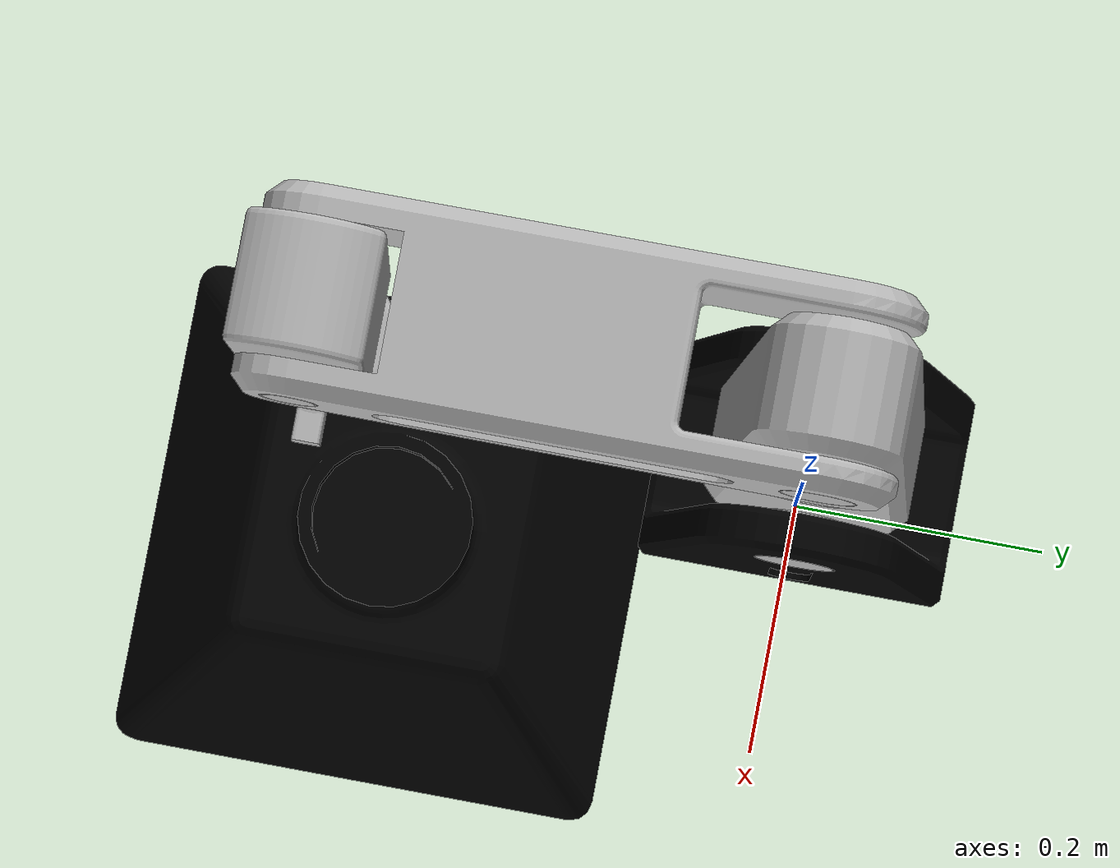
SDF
<?xml version='1.0'?>
<sdf version='1.7'>
  <model name='robot_arm_urdf'>
    <link name='base_link'>
      <pose>0 0 0 0 -0 0</pose>
      <inertial>
        <pose>0 0 0.073876 0 -0 0</pose>
        <mass>17.147</mass>
        <inertia>
          <ixx>0.192</ixx>
          <ixy>-0</ixy>
          <ixz>0</ixz>
          <iyy>0.192</iyy>
          <iyz>0</iyz>
          <izz>0.29544</izz>
        </inertia>
      </inertial>
      <self_collide>0</self_collide>
      <enable_wind>0</enable_wind>
      <kinematic>0</kinematic>
      <gravity>1</gravity>
      <visual name='base_link_visual'>
        <pose>0 0 0 0 -0 0</pose>
        <geometry>
          <mesh>
            <scale>1 1 1</scale>
            <uri>/home/sebas/catkin_ws/src/arm_ros_project/robot_arm_urdf/meshes/base_link.STL</uri>
          </mesh>
        </geometry>
        <material>
          <shader type='pixel'>
            <normal_map>__default__</normal_map>
          </shader>
          <script>
            <name>ModelPreview_1::base_link::base_link_visual_MATERIAL_</name>
          </script>
          <ambient>0.5 0.5 0 0</ambient>
          <diffuse>0 0 0 1</diffuse>
          <specular>0 0 0 1</specular>
          <emissive>0 0 0 1</emissive>
        </material>
        <transparency>0</transparency>
        <cast_shadows>1</cast_shadows>
      </visual>
      <collision name='base_link_collision'>
        <laser_retro>0</laser_retro>
        <max_contacts>10</max_contacts>
        <pose>0 0 0 0 -0 0</pose>
        <geometry>
          <mesh>
            <uri>/home/sebas/catkin_ws/src/arm_ros_project/robot_arm_urdf/meshes/base_link.STL</uri>
            <scale>1 1 1</scale>
          </mesh>
        </geometry>
        <surface>
          <friction>
            <ode>
              <mu>1</mu>
              <mu2>1</mu2>
              <fdir1>0 0 0</fdir1>
              <slip1>0</slip1>
              <slip2>0</slip2>
            </ode>
            <torsional>
              <coefficient>1</coefficient>
              <patch_radius>0</patch_radius>
              <surface_radius>0</surface_radius>
              <use_patch_radius>1</use_patch_radius>
              <ode>
                <slip>0</slip>
              </ode>
            </torsional>
          </friction>
          <bounce>
            <restitution_coefficient>0</restitution_coefficient>
            <threshold>1e+06</threshold>
          </bounce>
          <contact>
            <collide_without_contact>0</collide_without_contact>
            <collide_without_contact_bitmask>1</collide_without_contact_bitmask>
            <collide_bitmask>1</collide_bitmask>
            <ode>
              <soft_cfm>0</soft_cfm>
              <soft_erp>0.2</soft_erp>
              <kp>1e+13</kp>
              <kd>1</kd>
              <max_vel>0.01</max_vel>
              <min_depth>0</min_depth>
            </ode>
            <bullet>
              <split_impulse>1</split_impulse>
              <split_impulse_penetration_threshold>-0.01</split_impulse_penetration_threshold>
              <soft_cfm>0</soft_cfm>
              <soft_erp>0.2</soft_erp>
              <kp>1e+13</kp>
              <kd>1</kd>
            </bullet>
          </contact>
        </surface>
      </collision>
    </link>
    <link name='link_1'>
      <pose>0 -0 0.2 1.5708 -0 1.5708</pose>
      <inertial>
        <pose>0 0.11047 0 0 -0 0</pose>
        <mass>3.0905</mass>
        <inertia>
          <ixx>0.026302</ixx>
          <ixy>-0</ixy>
          <ixz>-0</ixz>
          <iyy>0.019632</iyy>
          <iyz>-0</iyz>
          <izz>0.025388</izz>
        </inertia>
      </inertial>
      <self_collide>1</self_collide>
      <enable_wind>0</enable_wind>
      <kinematic>0</kinematic>
      <gravity>1</gravity>
      <visual name='link_1_visual'>
        <pose>0 0 0 0 -0 0</pose>
        <geometry>
          <mesh>
            <scale>1 1 1</scale>
            <uri>/home/sebas/catkin_ws/src/arm_ros_project/robot_arm_urdf/meshes/link_1.STL</uri>
          </mesh>
        </geometry>
        <material>
          <shader type='pixel'>
            <normal_map>__default__</normal_map>
          </shader>
          <script>
            <name>ModelPreview_1::link_1::link_1_visual_MATERIAL_</name>
          </script>
          <ambient>0.5 0.5 0.5 0</ambient>
          <diffuse>0 0 0 1</diffuse>
          <specular>0 0 0 1</specular>
          <emissive>0 0 0 1</emissive>
        </material>
        <transparency>0</transparency>
        <cast_shadows>1</cast_shadows>
      </visual>
      <collision name='link_1_collision'>
        <laser_retro>0</laser_retro>
        <max_contacts>10</max_contacts>
        <pose>0 0 0 0 -0 0</pose>
        <geometry>
          <mesh>
            <uri>/home/sebas/catkin_ws/src/arm_ros_project/robot_arm_urdf/meshes/link_1.STL</uri>
            <scale>1 1 1</scale>
          </mesh>
        </geometry>
        <surface>
          <friction>
            <ode>
              <mu>1</mu>
              <mu2>1</mu2>
              <fdir1>0 0 0</fdir1>
              <slip1>0</slip1>
              <slip2>0</slip2>
            </ode>
            <torsional>
              <coefficient>1</coefficient>
              <patch_radius>0</patch_radius>
              <surface_radius>0</surface_radius>
              <use_patch_radius>1</use_patch_radius>
              <ode>
                <slip>0</slip>
              </ode>
            </torsional>
          </friction>
          <bounce>
            <restitution_coefficient>0</restitution_coefficient>
            <threshold>1e+06</threshold>
          </bounce>
          <contact>
            <collide_without_contact>0</collide_without_contact>
            <collide_without_contact_bitmask>1</collide_without_contact_bitmask>
            <collide_bitmask>1</collide_bitmask>
            <ode>
              <soft_cfm>0</soft_cfm>
              <soft_erp>0.2</soft_erp>
              <kp>1e+13</kp>
              <kd>1</kd>
              <max_vel>0.01</max_vel>
              <min_depth>0</min_depth>
            </ode>
            <bullet>
              <split_impulse>1</split_impulse>
              <split_impulse_penetration_threshold>-0.01</split_impulse_penetration_threshold>
              <soft_cfm>0</soft_cfm>
              <soft_erp>0.2</soft_erp>
              <kp>1e+13</kp>
              <kd>1</kd>
            </bullet>
          </contact>
        </surface>
      </collision>
    </link>
    <link name='link_2'>
      <pose>1e-06 -0 0.405 1.5708 -0 1.5708</pose>
      <inertial>
        <pose>-0 0.16752 -0 0 -0 0</pose>
        <mass>5.5867</mass>
        <inertia>
          <ixx>0.12632</ixx>
          <ixy>8.4877e-17</ixy>
          <ixz>7.8685e-19</ixz>
          <iyy>0.011401</iyy>
          <iyz>1.4432e-16</iyz>
          <izz>0.12911</izz>
        </inertia>
      </inertial>
      <self_collide>1</self_collide>
      <enable_wind>0</enable_wind>
      <kinematic>0</kinematic>
      <visual name='link_2_visual'>
        <pose>0 0 0 0 -0 0</pose>
        <geometry>
          <mesh>
            <scale>1 1 1</scale>
            <uri>/home/sebas/catkin_ws/src/arm_ros_project/robot_arm_urdf/meshes/link_2.STL</uri>
          </mesh>
        </geometry>
        <material>
          <shader type='pixel'/>
        </material>
        <transparency>0</transparency>
        <cast_shadows>1</cast_shadows>
      </visual>
      <collision name='link_2_collision'>
        <laser_retro>0</laser_retro>
        <max_contacts>10</max_contacts>
        <pose>0 0 0 0 -0 0</pose>
        <geometry>
          <mesh>
            <uri>/home/sebas/catkin_ws/src/arm_ros_project/robot_arm_urdf/meshes/link_2.STL</uri>
            <scale>1 1 1</scale>
          </mesh>
        </geometry>
        <surface>
          <friction>
            <ode>
              <mu>1</mu>
              <mu2>1</mu2>
              <fdir1>0 0 0</fdir1>
              <slip1>0</slip1>
              <slip2>0</slip2>
            </ode>
            <torsional>
              <coefficient>1</coefficient>
              <patch_radius>0</patch_radius>
              <surface_radius>0</surface_radius>
              <use_patch_radius>1</use_patch_radius>
              <ode>
                <slip>0</slip>
              </ode>
            </torsional>
          </friction>
          <bounce>
            <restitution_coefficient>0</restitution_coefficient>
            <threshold>1e+06</threshold>
          </bounce>
          <contact>
            <collide_without_contact>0</collide_without_contact>
            <collide_without_contact_bitmask>1</collide_without_contact_bitmask>
            <collide_bitmask>1</collide_bitmask>
            <ode>
              <soft_cfm>0</soft_cfm>
              <soft_erp>0.2</soft_erp>
              <kp>1e+13</kp>
              <kd>1</kd>
              <max_vel>0.01</max_vel>
              <min_depth>0</min_depth>
            </ode>
            <bullet>
              <split_impulse>1</split_impulse>
              <split_impulse_penetration_threshold>-0.01</split_impulse_penetration_threshold>
              <soft_cfm>0</soft_cfm>
              <soft_erp>0.2</soft_erp>
              <kp>1e+13</kp>
              <kd>1</kd>
            </bullet>
          </contact>
        </surface>
      </collision>
    </link>
    <link name='link_3'>
      <pose>2e-06 -0 0.805 1.5708 -0 1.5708</pose>
      <inertial>
        <pose>-0.17893 0 -0 0 -0 0</pose>
        <mass>2.8262</mass>
        <inertia>
          <ixx>0.0074041</ixx>
          <ixy>-1.7927e-17</ixy>
          <ixz>4.2672e-17</ixz>
          <iyy>0.028552</iyy>
          <iyz>-3.4736e-10</iyz>
          <izz>0.025128</izz>
        </inertia>
      </inertial>
      <self_collide>1</self_collide>
      <enable_wind>0</enable_wind>
      <kinematic>0</kinematic>
      <visual name='link_3_visual'>
        <pose>0 0 0 0 -0 0</pose>
        <geometry>
          <mesh>
            <scale>1 1 1</scale>
            <uri>/home/sebas/catkin_ws/src/arm_ros_project/robot_arm_urdf/meshes/link_3.STL</uri>
          </mesh>
        </geometry>
        <material>
          <shader type='pixel'/>
        </material>
        <transparency>0</transparency>
        <cast_shadows>1</cast_shadows>
      </visual>
      <collision name='link_3_collision'>
        <laser_retro>0</laser_retro>
        <max_contacts>10</max_contacts>
        <pose>0 0 0 0 -0 0</pose>
        <geometry>
          <mesh>
            <uri>/home/sebas/catkin_ws/src/arm_ros_project/robot_arm_urdf/meshes/link_3.STL</uri>
            <scale>1 1 1</scale>
          </mesh>
        </geometry>
        <surface>
          <friction>
            <ode>
              <mu>1</mu>
              <mu2>1</mu2>
              <fdir1>0 0 0</fdir1>
              <slip1>0</slip1>
              <slip2>0</slip2>
            </ode>
            <torsional>
              <coefficient>1</coefficient>
              <patch_radius>0</patch_radius>
              <surface_radius>0</surface_radius>
              <use_patch_radius>1</use_patch_radius>
              <ode>
                <slip>0</slip>
              </ode>
            </torsional>
          </friction>
          <bounce>
            <restitution_coefficient>0</restitution_coefficient>
            <threshold>1e+06</threshold>
          </bounce>
          <contact>
            <collide_without_contact>0</collide_without_contact>
            <collide_without_contact_bitmask>1</collide_without_contact_bitmask>
            <collide_bitmask>1</collide_bitmask>
            <ode>
              <soft_cfm>0</soft_cfm>
              <soft_erp>0.2</soft_erp>
              <kp>1e+13</kp>
              <kd>1</kd>
              <max_vel>0.01</max_vel>
              <min_depth>0</min_depth>
            </ode>
            <bullet>
              <split_impulse>1</split_impulse>
              <split_impulse_penetration_threshold>-0.01</split_impulse_penetration_threshold>
              <soft_cfm>0</soft_cfm>
              <soft_erp>0.2</soft_erp>
              <kp>1e+13</kp>
              <kd>1</kd>
            </bullet>
          </contact>
        </surface>
      </collision>
    </link>
    <link name='link_4'>
      <pose>4e-06 -0.35 0.805 -2.36302 -1.57079 -0.778568</pose>
      <inertial>
        <pose>-0.051672 -0 -0 0 -0 0</pose>
        <mass>1.8097</mass>
        <inertia>
          <ixx>0.0023112</ixx>
          <ixy>-9.6437e-18</ixy>
          <ixz>-9.9829e-19</ixz>
          <iyy>0.0096102</iyy>
          <iyz>1.3194e-19</iyz>
          <izz>0.0093908</izz>
        </inertia>
      </inertial>
      <self_collide>1</self_collide>
      <enable_wind>0</enable_wind>
      <kinematic>0</kinematic>
      <visual name='link_4_visual'>
        <pose>0 0 0 0 -0 0</pose>
        <geometry>
          <mesh>
            <scale>1 1 1</scale>
            <uri>/home/sebas/catkin_ws/src/arm_ros_project/robot_arm_urdf/meshes/link_4.STL</uri>
          </mesh>
        </geometry>
        <material>
          <shader type='pixel'/>
        </material>
        <transparency>0</transparency>
        <cast_shadows>1</cast_shadows>
      </visual>
      <collision name='link_4_collision'>
        <laser_retro>0</laser_retro>
        <max_contacts>10</max_contacts>
        <pose>0 0 0 0 -0 0</pose>
        <geometry>
          <mesh>
            <uri>/home/sebas/catkin_ws/src/arm_ros_project/robot_arm_urdf/meshes/link_4.STL</uri>
            <scale>1 1 1</scale>
          </mesh>
        </geometry>
        <surface>
          <friction>
            <ode>
              <mu>1</mu>
              <mu2>1</mu2>
              <fdir1>0 0 0</fdir1>
              <slip1>0</slip1>
              <slip2>0</slip2>
            </ode>
            <torsional>
              <coefficient>1</coefficient>
              <patch_radius>0</patch_radius>
              <surface_radius>0</surface_radius>
              <use_patch_radius>1</use_patch_radius>
              <ode>
                <slip>0</slip>
              </ode>
            </torsional>
          </friction>
          <bounce>
            <restitution_coefficient>0</restitution_coefficient>
            <threshold>1e+06</threshold>
          </bounce>
          <contact>
            <collide_without_contact>0</collide_without_contact>
            <collide_without_contact_bitmask>1</collide_without_contact_bitmask>
            <collide_bitmask>1</collide_bitmask>
            <ode>
              <soft_cfm>0</soft_cfm>
              <soft_erp>0.2</soft_erp>
              <kp>1e+13</kp>
              <kd>1</kd>
              <max_vel>0.01</max_vel>
              <min_depth>0</min_depth>
            </ode>
            <bullet>
              <split_impulse>1</split_impulse>
              <split_impulse_penetration_threshold>-0.01</split_impulse_penetration_threshold>
              <soft_cfm>0</soft_cfm>
              <soft_erp>0.2</soft_erp>
              <kp>1e+13</kp>
              <kd>1</kd>
            </bullet>
          </contact>
        </surface>
      </collision>
    </link>
    <link name='link_5'>
      <pose>3e-06 -0.349999 0.617 -2.36302 -1.57079 -0.778568</pose>
      <inertial>
        <pose>-0.018544 0 -0 0 -0 0</pose>
        <mass>0.19053</mass>
        <inertia>
          <ixx>0.00030197</ixx>
          <ixy>1.6611e-20</ixy>
          <ixz>3.6309e-21</ixz>
          <iyy>0.00022817</iyy>
          <iyz>-1.9664e-11</iyz>
          <izz>0.00011843</izz>
        </inertia>
      </inertial>
      <self_collide>1</self_collide>
      <enable_wind>0</enable_wind>
      <kinematic>0</kinematic>
      <visual name='link_5_visual'>
        <pose>0 0 0 0 -0 0</pose>
        <geometry>
          <mesh>
            <scale>1 1 1</scale>
            <uri>/home/sebas/catkin_ws/src/arm_ros_project/robot_arm_urdf/meshes/link_5.STL</uri>
          </mesh>
        </geometry>
        <material>
          <shader type='pixel'/>
        </material>
        <transparency>0</transparency>
        <cast_shadows>1</cast_shadows>
      </visual>
      <collision name='link_5_collision'>
        <laser_retro>0</laser_retro>
        <max_contacts>10</max_contacts>
        <pose>0 0 0 0 -0 0</pose>
        <geometry>
          <mesh>
            <uri>/home/sebas/catkin_ws/src/arm_ros_project/robot_arm_urdf/meshes/link_5.STL</uri>
            <scale>1 1 1</scale>
          </mesh>
        </geometry>
        <surface>
          <friction>
            <ode>
              <mu>1</mu>
              <mu2>1</mu2>
              <fdir1>0 0 0</fdir1>
              <slip1>0</slip1>
              <slip2>0</slip2>
            </ode>
            <torsional>
              <coefficient>1</coefficient>
              <patch_radius>0</patch_radius>
              <surface_radius>0</surface_radius>
              <use_patch_radius>1</use_patch_radius>
              <ode>
                <slip>0</slip>
              </ode>
            </torsional>
          </friction>
          <bounce>
            <restitution_coefficient>0</restitution_coefficient>
            <threshold>1e+06</threshold>
          </bounce>
          <contact>
            <collide_without_contact>0</collide_without_contact>
            <collide_without_contact_bitmask>1</collide_without_contact_bitmask>
            <collide_bitmask>1</collide_bitmask>
            <ode>
              <soft_cfm>0</soft_cfm>
              <soft_erp>0.2</soft_erp>
              <kp>1e+13</kp>
              <kd>1</kd>
              <max_vel>0.01</max_vel>
              <min_depth>0</min_depth>
            </ode>
            <bullet>
              <split_impulse>1</split_impulse>
              <split_impulse_penetration_threshold>-0.01</split_impulse_penetration_threshold>
              <soft_cfm>0</soft_cfm>
              <soft_erp>0.2</soft_erp>
              <kp>1e+13</kp>
              <kd>1</kd>
            </bullet>
          </contact>
        </surface>
      </collision>
    </link>
    <link name='link_6'>
      <pose>3e-06 0.049999 1.157 -2.38214 -1.57079 -0.759448</pose>
      <inertial>
        <pose>-0.60237 0.4 -0.016013 0 -0 0</pose>
        <mass>0.11653</mass>
        <inertia>
          <ixx>3.925e-05</ixx>
          <ixy>-0</ixy>
          <ixz>1.026e-05</ixz>
          <iyy>7.119e-05</iyy>
          <iyz>-0</iyz>
          <izz>8.488e-05</izz>
        </inertia>
      </inertial>
      <self_collide>1</self_collide>
      <enable_wind>0</enable_wind>
      <kinematic>0</kinematic>
      <gravity>1</gravity>
      <visual name='link_6_visual'>
        <pose>0 0 0 0 -0 0</pose>
        <geometry>
          <mesh>
            <scale>1 1 1</scale>
            <uri>/home/sebas/catkin_ws/src/arm_ros_project/robot_arm_urdf/meshes/link_6.STL</uri>
          </mesh>
        </geometry>
        <material>
          <shader type='pixel'>
            <normal_map>__default__</normal_map>
          </shader>
          <script>
            <name>ModelPreview_1::link_6::link_6_visual_MATERIAL_</name>
          </script>
          <ambient>1 0.5 0 0</ambient>
          <diffuse>0 0 0 1</diffuse>
          <specular>0 0 0 1</specular>
          <emissive>0 0 0 1</emissive>
        </material>
        <transparency>0</transparency>
        <cast_shadows>1</cast_shadows>
      </visual>
      <collision name='link_6_collision'>
        <laser_retro>0</laser_retro>
        <max_contacts>10</max_contacts>
        <pose>0 0 0 0 -0 0</pose>
        <geometry>
          <mesh>
            <uri>/home/sebas/catkin_ws/src/arm_ros_project/robot_arm_urdf/meshes/link_6.STL</uri>
            <scale>1 1 1</scale>
          </mesh>
        </geometry>
        <surface>
          <friction>
            <ode>
              <mu>1</mu>
              <mu2>1</mu2>
              <fdir1>0 0 0</fdir1>
              <slip1>0</slip1>
              <slip2>0</slip2>
            </ode>
            <torsional>
              <coefficient>1</coefficient>
              <patch_radius>0</patch_radius>
              <surface_radius>0</surface_radius>
              <use_patch_radius>1</use_patch_radius>
              <ode>
                <slip>0</slip>
              </ode>
            </torsional>
          </friction>
          <bounce>
            <restitution_coefficient>0</restitution_coefficient>
            <threshold>1e+06</threshold>
          </bounce>
          <contact>
            <collide_without_contact>0</collide_without_contact>
            <collide_without_contact_bitmask>1</collide_without_contact_bitmask>
            <collide_bitmask>1</collide_bitmask>
            <ode>
              <soft_cfm>0</soft_cfm>
              <soft_erp>0.2</soft_erp>
              <kp>1e+13</kp>
              <kd>1</kd>
              <max_vel>0.01</max_vel>
              <min_depth>0</min_depth>
            </ode>
            <bullet>
              <split_impulse>1</split_impulse>
              <split_impulse_penetration_threshold>-0.01</split_impulse_penetration_threshold>
              <soft_cfm>0</soft_cfm>
              <soft_erp>0.2</soft_erp>
              <kp>1e+13</kp>
              <kd>1</kd>
            </bullet>
          </contact>
        </surface>
      </collision>
    </link>
    <link name='link_7'>
      <pose>6e-06 -0.750001 1.157 0.765936 -1.57079 -0.765929</pose>
      <inertial>
        <pose>-0.60237 0.4 -0.016013 0 -0 0</pose>
        <mass>0.11653</mass>
        <inertia>
          <ixx>3.925e-05</ixx>
          <ixy>-0</ixy>
          <ixz>1.026e-05</ixz>
          <iyy>7.119e-05</iyy>
          <iyz>-0</iyz>
          <izz>8.488e-05</izz>
        </inertia>
      </inertial>
      <self_collide>1</self_collide>
      <enable_wind>0</enable_wind>
      <kinematic>0</kinematic>
      <gravity>1</gravity>
      <visual name='link_7_visual'>
        <pose>0 0 0 0 -0 0</pose>
        <geometry>
          <mesh>
            <scale>1 1 1</scale>
            <uri>/home/sebas/catkin_ws/src/arm_ros_project/robot_arm_urdf/meshes/link_7.STL</uri>
          </mesh>
        </geometry>
        <material>
          <shader type='pixel'>
            <normal_map>__default__</normal_map>
          </shader>
          <script>
            <name>ModelPreview_1::link_7::link_7_visual_MATERIAL_</name>
          </script>
          <ambient>1 0.5 0 0</ambient>
          <diffuse>0 0 0 1</diffuse>
          <specular>0 0 0 1</specular>
          <emissive>0 0 0 1</emissive>
        </material>
        <transparency>0</transparency>
        <cast_shadows>1</cast_shadows>
      </visual>
      <collision name='link_7_collision'>
        <laser_retro>0</laser_retro>
        <max_contacts>10</max_contacts>
        <pose>0 0 0 0 -0 0</pose>
        <geometry>
          <mesh>
            <uri>/home/sebas/catkin_ws/src/arm_ros_project/robot_arm_urdf/meshes/link_7.STL</uri>
            <scale>1 1 1</scale>
          </mesh>
        </geometry>
        <surface>
          <friction>
            <ode>
              <mu>1</mu>
              <mu2>1</mu2>
              <fdir1>0 0 0</fdir1>
              <slip1>0</slip1>
              <slip2>0</slip2>
            </ode>
            <torsional>
              <coefficient>1</coefficient>
              <patch_radius>0</patch_radius>
              <surface_radius>0</surface_radius>
              <use_patch_radius>1</use_patch_radius>
              <ode>
                <slip>0</slip>
              </ode>
            </torsional>
          </friction>
          <bounce>
            <restitution_coefficient>0</restitution_coefficient>
            <threshold>1e+06</threshold>
          </bounce>
          <contact>
            <collide_without_contact>0</collide_without_contact>
            <collide_without_contact_bitmask>1</collide_without_contact_bitmask>
            <collide_bitmask>1</collide_bitmask>
            <ode>
              <soft_cfm>0</soft_cfm>
              <soft_erp>0.2</soft_erp>
              <kp>1e+13</kp>
              <kd>1</kd>
              <max_vel>0.01</max_vel>
              <min_depth>0</min_depth>
            </ode>
            <bullet>
              <split_impulse>1</split_impulse>
              <split_impulse_penetration_threshold>-0.01</split_impulse_penetration_threshold>
              <soft_cfm>0</soft_cfm>
              <soft_erp>0.2</soft_erp>
              <kp>1e+13</kp>
              <kd>1</kd>
            </bullet>
          </contact>
        </surface>
      </collision>
    </link>
    <joint name='joint_1' type='revolute'>
      <parent>base_link</parent>
      <child>link_1</child>
      <pose>0 0 -0 0 -0 0</pose>
      <axis>
        <xyz>0 1 0</xyz>
        <limit>
          <lower>0</lower>
          <upper>3.142</upper>
          <effort>300</effort>
          <velocity>3</velocity>
        </limit>
        <dynamics>
          <spring_reference>0</spring_reference>
          <spring_stiffness>0</spring_stiffness>
          <damping>0</damping>
          <friction>0</friction>
        </dynamics>
      </axis>
      <physics>
        <ode>
          <limit>
            <cfm>0</cfm>
            <erp>0.2</erp>
          </limit>
          <suspension>
            <cfm>0</cfm>
            <erp>0.2</erp>
          </suspension>
        </ode>
      </physics>
    </joint>
    <joint name='joint_2' type='revolute'>
      <parent>link_1</parent>
      <child>link_2</child>
      <pose>-0 0 -0 0 -0 0</pose>
      <axis>
        <xyz>0 0 1</xyz>
        <limit>
          <lower>-1.57</lower>
          <upper>1.57</upper>
          <effort>200</effort>
          <velocity>3</velocity>
        </limit>
        <dynamics>
          <spring_reference>0</spring_reference>
          <spring_stiffness>0</spring_stiffness>
          <damping>0</damping>
          <friction>0</friction>
        </dynamics>
      </axis>
      <physics>
        <ode>
          <limit>
            <cfm>0</cfm>
            <erp>0.2</erp>
          </limit>
          <suspension>
            <cfm>0</cfm>
            <erp>0.2</erp>
          </suspension>
        </ode>
      </physics>
    </joint>
    <joint name='joint_3' type='revolute'>
      <parent>link_2</parent>
      <child>link_3</child>
      <pose>-0 0 -0 0 -0 0</pose>
      <axis>
        <xyz>0 0 1</xyz>
        <limit>
          <lower>-1.572</lower>
          <upper>1</upper>
          <effort>200</effort>
          <velocity>3</velocity>
        </limit>
        <dynamics>
          <spring_reference>0</spring_reference>
          <spring_stiffness>0</spring_stiffness>
          <damping>0</damping>
          <friction>0</friction>
        </dynamics>
      </axis>
      <physics>
        <ode>
          <limit>
            <cfm>0</cfm>
            <erp>0.2</erp>
          </limit>
          <suspension>
            <cfm>0</cfm>
            <erp>0.2</erp>
          </suspension>
        </ode>
      </physics>
    </joint>
    <joint name='joint_4' type='revolute'>
      <parent>link_3</parent>
      <child>link_4</child>
      <pose>0 -0 -0 0 -0 0</pose>
      <axis>
        <xyz>0 0 1</xyz>
        <limit>
          <lower>-3.142</lower>
          <upper>0</upper>
          <effort>200</effort>
          <velocity>3</velocity>
        </limit>
        <dynamics>
          <spring_reference>0</spring_reference>
          <spring_stiffness>0</spring_stiffness>
          <damping>0</damping>
          <friction>0</friction>
        </dynamics>
      </axis>
      <physics>
        <ode>
          <limit>
            <cfm>0</cfm>
            <erp>0.2</erp>
          </limit>
          <suspension>
            <cfm>0</cfm>
            <erp>0.2</erp>
          </suspension>
        </ode>
      </physics>
    </joint>
    <joint name='joint_5' type='revolute'>
      <parent>link_4</parent>
      <child>link_5</child>
      <pose>-0 -0 0 0 -0 0</pose>
      <axis>
        <xyz>1 0 0</xyz>
        <limit>
          <lower>0</lower>
          <upper>3.142</upper>
          <effort>200</effort>
          <velocity>3</velocity>
        </limit>
        <dynamics>
          <spring_reference>0</spring_reference>
          <spring_stiffness>0</spring_stiffness>
          <damping>0</damping>
          <friction>0</friction>
        </dynamics>
      </axis>
      <physics>
        <ode>
          <limit>
            <cfm>0</cfm>
            <erp>0.2</erp>
          </limit>
          <suspension>
            <cfm>0</cfm>
            <erp>0.2</erp>
          </suspension>
        </ode>
      </physics>
    </joint>
    <joint name='joint_6' type='prismatic'>
      <parent>link_5</parent>
      <child>link_6</child>
      <pose>0 -0 -0 0 -0 0</pose>
      <axis>
        <xyz>0 0 -1</xyz>
        <limit>
          <lower>0</lower>
          <upper>0.03</upper>
          <effort>100</effort>
          <velocity>3</velocity>
        </limit>
        <dynamics>
          <spring_reference>0</spring_reference>
          <spring_stiffness>0</spring_stiffness>
          <damping>0</damping>
          <friction>0</friction>
        </dynamics>
      </axis>
      <physics>
        <ode>
          <limit>
            <cfm>0</cfm>
            <erp>0.2</erp>
          </limit>
          <suspension>
            <cfm>0</cfm>
            <erp>0.2</erp>
          </suspension>
        </ode>
      </physics>
    </joint>
    <joint name='joint_7' type='prismatic'>
      <parent>link_5</parent>
      <child>link_7</child>
      <pose>0 -0 -0 -0 -0 -0</pose>
      <axis>
        <xyz>0 0 1</xyz>
        <limit>
          <lower>-0.03</lower>
          <upper>0</upper>
          <effort>100</effort>
          <velocity>3</velocity>
        </limit>
        <dynamics>
          <spring_reference>0</spring_reference>
          <spring_stiffness>0</spring_stiffness>
          <damping>0</damping>
          <friction>0</friction>
        </dynamics>
      </axis>
      <physics>
        <ode>
          <limit>
            <cfm>0</cfm>
            <erp>0.2</erp>
          </limit>
          <suspension>
            <cfm>0</cfm>
            <erp>0.2</erp>
          </suspension>
        </ode>
      </physics>
    </joint>
    <static>0</static>
    <allow_auto_disable>1</allow_auto_disable>
    <plugin name='control' filename='libgazebo_ros_control.so'>
      <robotNamespace>/</robotNamespace>
    </plugin>
    <plugin name='grasp' filename='libgazebo_grasp_fix.so'>
      <arm>
        <arm_name>arm</arm_name>
        <palm_link>link_5</palm_link>
        <gripper_link>link_6</gripper_link>
        <gripper_link>link_7</gripper_link>
      </arm>
      <forces_angle_tolerance>100</forces_angle_tolerance>
      <update_rate>4</update_rate>
      <grip_count_threshold>4</grip_count_threshold>
      <max_grip_count>8</max_grip_count>
      <release_tolerance>0.005</release_tolerance>
      <diable_collisions_on_attach>0</diable_collisions_on_attach>
      <contact_topic>__default_topic__</contact_topic>
      <robotNamespace>/</robotNamespace>
    </plugin>
  </model>
</sdf>
